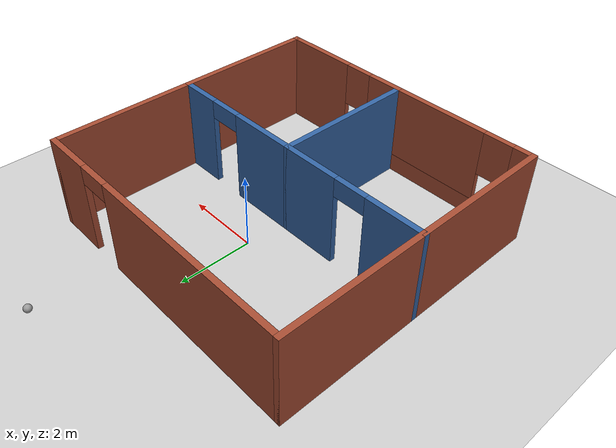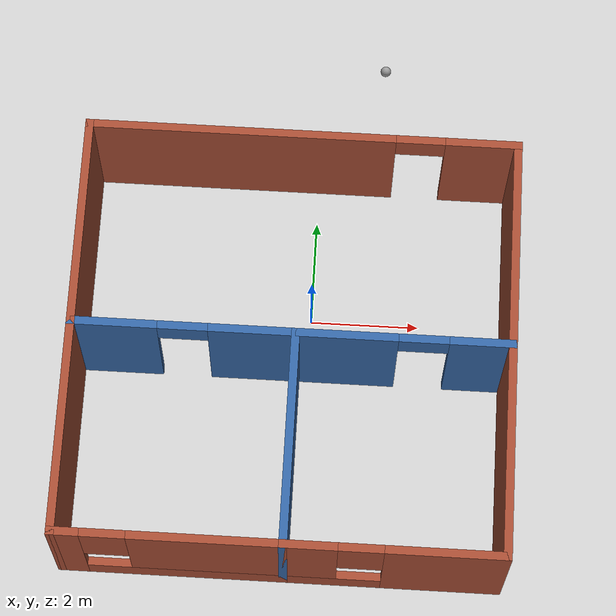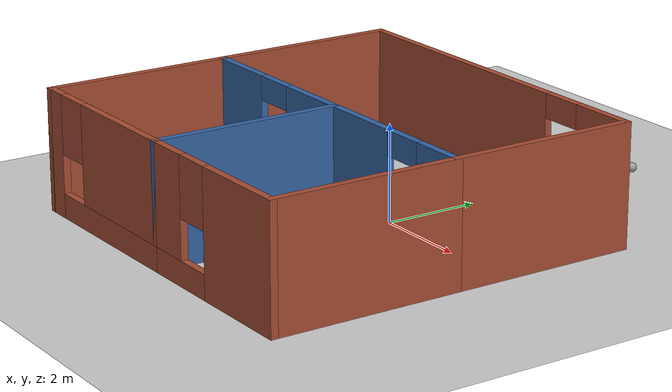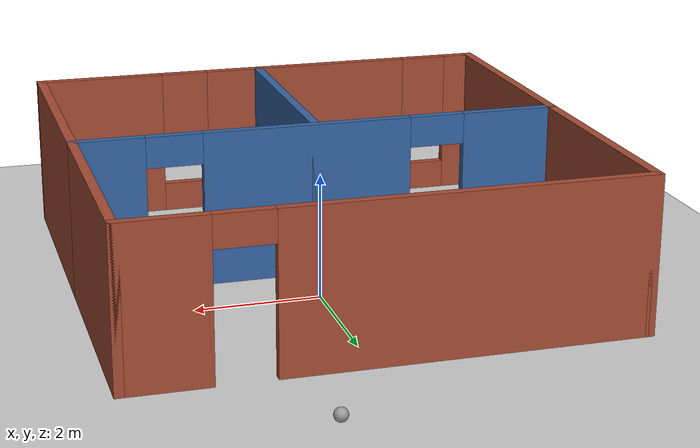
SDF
<sdf version="1.6">
 <world name="default">
  <light name="sun" type="directional">
   <pose>0 0 10 0 -0 0</pose>
   <diffuse>0.8 0.8 0.8 1</diffuse>
   <specular>0.2 0.2 0.2 1</specular>
   <attenuation>
    <range>1000</range>
    <constant>0.9</constant>
    <linear>0.01</linear>
    <quadratic>0.001</quadratic>
   </attenuation>
   <direction>-0.5 0.1 -0.9</direction>
  </light>
  <model name="ground_plane">
   <static>1</static>
   <link name="link">
    <collision name="collision">
     <geometry><plane><normal>0 0 1</normal><size>100 100</size></plane></geometry>
     <surface>
      <contact><collide_bitmask>65535</collide_bitmask></contact>
      <friction><ode><mu>100</mu><mu2>50</mu2></ode></friction>
     </surface>
    </collision>
    <visual name="visual">
     <cast_shadows>0</cast_shadows>
     <geometry><plane><normal>0 0 1</normal><size>100 100</size></plane></geometry>
     <material>
      <script><uri>file://media/materials/scripts/gazebo.material</uri><name>Gazebo/Grey</name></script>
     </material>
    </visual>
   </link>
  </model>
  <gravity>0 0 -9.8</gravity>
  <magnetic_field>6e-06 2.3e-05 -4.2e-05</magnetic_field>
  <atmosphere type="adiabatic"/>
  <physics name="default_physics" default="0" type="ode">
   <max_step_size>0.001</max_step_size>
   <real_time_factor>1</real_time_factor>
   <real_time_update_rate>1000</real_time_update_rate>
  </physics>
  <scene><ambient>0.4 0.4 0.4 1</ambient><background>0.7 0.7 0.7 1</background><shadows>1</shadows></scene>
  <spherical_coordinates>
   <surface_model>EARTH_WGS84</surface_model>
   <latitude_deg>0</latitude_deg>
   <longitude_deg>0</longitude_deg>
   <elevation>0</elevation>
   <heading_deg>0</heading_deg>
  </spherical_coordinates>
  <model name="building">
   <pose>-0.312568 -1.10768 0 0 -0 0</pose>
   <link name="Wall_0">
    <visual name="Wall_0_Visual_0">
     <pose>-3.19275 0 1.25 0 -0 0</pose>
     <geometry><box><size>1.6145 0.15 2.5</size></box></geometry>
     <material>
      <script><uri>file://media/materials/scripts/gazebo.material</uri><name>Gazebo/Grey</name></script>
      <ambient>0.203922 0.396078 0.643137 1</ambient>
     </material>
     <meta><layer>0</layer></meta>
    </visual>
    <collision name="Wall_0_Collision_0">
     <geometry><box><size>1.6145 0.15 2.5</size></box></geometry>
     <pose>-3.19275 0 1.25 0 -0 0</pose>
    </collision>
    <visual name="Wall_0_Visual_1">
     <pose>0.20925 0 1.25 0 -0 0</pose>
     <geometry><box><size>3.3895 0.15 2.5</size></box></geometry>
     <material>
      <script><uri>file://media/materials/scripts/gazebo.material</uri><name>Gazebo/Grey</name></script>
      <ambient>0.203922 0.396078 0.643137 1</ambient>
     </material>
     <meta><layer>0</layer></meta>
    </visual>
    <collision name="Wall_0_Collision_1">
     <geometry><box><size>3.3895 0.15 2.5</size></box></geometry>
     <pose>0.20925 0 1.25 0 -0 0</pose>
    </collision>
    <visual name="Wall_0_Visual_2">
     <pose>3.402 0 1.25 0 -0 0</pose>
     <geometry><box><size>1.196 0.15 2.5</size></box></geometry>
     <material>
      <script><uri>file://media/materials/scripts/gazebo.material</uri><name>Gazebo/Grey</name></script>
      <ambient>0.203922 0.396078 0.643137 1</ambient>
     </material>
     <meta><layer>0</layer></meta>
    </visual>
    <collision name="Wall_0_Collision_2">
     <geometry><box><size>1.196 0.15 2.5</size></box></geometry>
     <pose>3.402 0 1.25 0 -0 0</pose>
    </collision>
    <visual name="Wall_0_Visual_3">
     <pose>-1.9355 0 2.25 0 -0 0</pose>
     <geometry><box><size>0.9 0.15 0.5</size></box></geometry>
     <material>
      <script><uri>file://media/materials/scripts/gazebo.material</uri><name>Gazebo/Grey</name></script>
      <ambient>0.203922 0.396078 0.643137 1</ambient>
     </material>
     <meta><layer>0</layer></meta>
    </visual>
    <collision name="Wall_0_Collision_3">
     <geometry><box><size>0.9 0.15 0.5</size></box></geometry>
     <pose>-1.9355 0 2.25 0 -0 0</pose>
    </collision>
    <visual name="Wall_0_Visual_4">
     <pose>2.354 0 2.25 0 -0 0</pose>
     <geometry><box><size>0.9 0.15 0.5</size></box></geometry>
     <material>
      <script><uri>file://media/materials/scripts/gazebo.material</uri><name>Gazebo/Grey</name></script>
      <ambient>0.203922 0.396078 0.643137 1</ambient>
     </material>
     <meta><layer>0</layer></meta>
    </visual>
    <collision name="Wall_0_Collision_4">
     <geometry><box><size>0.9 0.15 0.5</size></box></geometry>
     <pose>2.354 0 2.25 0 -0 0</pose>
    </collision>
   </link>
   <link name="Wall_1">
    <collision name="Wall_1_Collision">
     <geometry><box><size>4 0.15 2.5</size></box></geometry>
     <pose>0 0 1.25 0 -0 0</pose>
    </collision>
    <visual name="Wall_1_Visual">
     <pose>0 0 1.25 0 -0 0</pose>
     <geometry><box><size>4 0.15 2.5</size></box></geometry>
     <material>
      <script><uri>file://media/materials/scripts/gazebo.material</uri><name>Gazebo/Bricks</name></script>
      <ambient>1 1 1 1</ambient>
     </material>
     <meta><layer>0</layer></meta>
    </visual>
    <pose>3.925 -1.925 0 0 -0 -1.5708</pose>
   </link>
   <link name="Wall_10">
    <collision name="Wall_10_Collision">
     <geometry><box><size>4 0.15 2.5</size></box></geometry>
     <pose>0 0 1.25 0 -0 0</pose>
    </collision>
    <visual name="Wall_10_Visual">
     <pose>0 0 1.25 0 -0 0</pose>
     <geometry><box><size>4 0.15 2.5</size></box></geometry>
     <material>
      <script><uri>file://media/materials/scripts/gazebo.material</uri><name>Gazebo/Bricks</name></script>
      <ambient>1 1 1 1</ambient>
     </material>
     <meta><layer>0</layer></meta>
    </visual>
    <pose>3.925 1.925 0 0 -0 -1.5708</pose>
   </link>
   <link name="Wall_2">
    <pose>2 -3.85 0 0 -0 3.14159</pose>
    <visual name="Wall_2_Visual_0">
     <pose>-0.91125 0 1.25 0 -0 0</pose>
     <geometry><box><size>2.1775 0.15 2.5</size></box></geometry>
     <material>
      <script><uri>file://media/materials/scripts/gazebo.material</uri><name>Gazebo/Bricks</name></script>
      <ambient>1 1 1 1</ambient>
     </material>
     <meta><layer>0</layer></meta>
    </visual>
    <collision name="Wall_2_Collision_0">
     <geometry><box><size>2.1775 0.15 2.5</size></box></geometry>
     <pose>-0.91125 0 1.25 0 -0 0</pose>
    </collision>
    <visual name="Wall_2_Visual_1">
     <pose>1.08875 0 0.25 0 -0 0</pose>
     <geometry><box><size>1.8225 0.15 0.5</size></box></geometry>
     <material>
      <script><uri>file://media/materials/scripts/gazebo.material</uri><name>Gazebo/Bricks</name></script>
      <ambient>1 1 1 1</ambient>
     </material>
     <meta><layer>0</layer></meta>
    </visual>
    <collision name="Wall_2_Collision_1">
     <geometry><box><size>1.8225 0.15 0.5</size></box></geometry>
     <pose>1.08875 0 0.25 0 -0 0</pose>
    </collision>
    <visual name="Wall_2_Visual_2">
     <pose>1.48875 0 1.5 0 -0 0</pose>
     <geometry><box><size>1.0225 0.15 2</size></box></geometry>
     <material>
      <script><uri>file://media/materials/scripts/gazebo.material</uri><name>Gazebo/Bricks</name></script>
      <ambient>1 1 1 1</ambient>
     </material>
     <meta><layer>0</layer></meta>
    </visual>
    <collision name="Wall_2_Collision_2">
     <geometry><box><size>1.0225 0.15 2</size></box></geometry>
     <pose>1.48875 0 1.5 0 -0 0</pose>
    </collision>
    <visual name="Wall_2_Visual_3">
     <pose>0.5775 0 1.9 0 -0 0</pose>
     <geometry><box><size>0.8 0.15 1.2</size></box></geometry>
     <material>
      <script><uri>file://media/materials/scripts/gazebo.material</uri><name>Gazebo/Bricks</name></script>
      <ambient>1 1 1 1</ambient>
     </material>
     <meta><layer>0</layer></meta>
    </visual>
    <collision name="Wall_2_Collision_3">
     <geometry><box><size>0.8 0.15 1.2</size></box></geometry>
     <pose>0.5775 0 1.9 0 -0 0</pose>
    </collision>
   </link>
   <link name="Wall_3">
    <collision name="Wall_3_Collision">
     <geometry><box><size>4 0.15 2.5</size></box></geometry>
     <pose>0 0 1.25 0 -0 0</pose>
    </collision>
    <visual name="Wall_3_Visual">
     <pose>0 0 1.25 0 -0 0</pose>
     <geometry><box><size>4 0.15 2.5</size></box></geometry>
     <material>
      <script><uri>file://media/materials/scripts/gazebo.material</uri><name>Gazebo/Grey</name></script>
      <ambient>0.203922 0.396078 0.643137 1</ambient>
     </material>
     <meta><layer>0</layer></meta>
    </visual>
    <pose>0.075 -1.925 0 0 -0 1.5708</pose>
   </link>
   <link name="Wall_5">
    <collision name="Wall_5_Collision">
     <geometry><box><size>4 0.15 2.5</size></box></geometry>
     <pose>0 0 1.25 0 -0 0</pose>
    </collision>
    <visual name="Wall_5_Visual">
     <pose>0 0 1.25 0 -0 0</pose>
     <geometry><box><size>4 0.15 2.5</size></box></geometry>
     <material>
      <script><uri>file://media/materials/scripts/gazebo.material</uri><name>Gazebo/Bricks</name></script>
      <ambient>1 1 1 1</ambient>
     </material>
     <meta><layer>0</layer></meta>
    </visual>
    <pose>-3.925 -1.925 0 0 -0 -1.5708</pose>
   </link>
   <link name="Wall_6">
    <pose>-1.925 -3.85 0 0 -0 0</pose>
    <visual name="Wall_6_Visual_0">
     <pose>-1.789 0 1.25 0 -0 0</pose>
     <geometry><box><size>0.572 0.15 2.5</size></box></geometry>
     <material>
      <script><uri>file://media/materials/scripts/gazebo.material</uri><name>Gazebo/Bricks</name></script>
      <ambient>1 1 1 1</ambient>
     </material>
     <meta><layer>0</layer></meta>
    </visual>
    <collision name="Wall_6_Collision_0">
     <geometry><box><size>0.572 0.15 2.5</size></box></geometry>
     <pose>-1.789 0 1.25 0 -0 0</pose>
    </collision>
    <visual name="Wall_6_Visual_1">
     <pose>0.286 0 0.25 0 -0 0</pose>
     <geometry><box><size>3.578 0.15 0.5</size></box></geometry>
     <material>
      <script><uri>file://media/materials/scripts/gazebo.material</uri><name>Gazebo/Bricks</name></script>
      <ambient>1 1 1 1</ambient>
     </material>
     <meta><layer>0</layer></meta>
    </visual>
    <collision name="Wall_6_Collision_1">
     <geometry><box><size>3.578 0.15 0.5</size></box></geometry>
     <pose>0.286 0 0.25 0 -0 0</pose>
    </collision>
    <visual name="Wall_6_Visual_2">
     <pose>0.686 0 1.5 0 -0 0</pose>
     <geometry><box><size>2.778 0.15 2</size></box></geometry>
     <material>
      <script><uri>file://media/materials/scripts/gazebo.material</uri><name>Gazebo/Bricks</name></script>
      <ambient>1 1 1 1</ambient>
     </material>
     <meta><layer>0</layer></meta>
    </visual>
    <collision name="Wall_6_Collision_2">
     <geometry><box><size>2.778 0.15 2</size></box></geometry>
     <pose>0.686 0 1.5 0 -0 0</pose>
    </collision>
    <visual name="Wall_6_Visual_3">
     <pose>-1.103 0 1.9 0 -0 0</pose>
     <geometry><box><size>0.8 0.15 1.2</size></box></geometry>
     <material>
      <script><uri>file://media/materials/scripts/gazebo.material</uri><name>Gazebo/Bricks</name></script>
      <ambient>1 1 1 1</ambient>
     </material>
     <meta><layer>0</layer></meta>
    </visual>
    <collision name="Wall_6_Collision_3">
     <geometry><box><size>0.8 0.15 1.2</size></box></geometry>
     <pose>-1.103 0 1.9 0 -0 0</pose>
    </collision>
   </link>
   <link name="Wall_8">
    <collision name="Wall_8_Collision">
     <geometry><box><size>4 0.15 2.5</size></box></geometry>
     <pose>0 0 1.25 0 -0 0</pose>
    </collision>
    <visual name="Wall_8_Visual">
     <pose>0 0 1.25 0 -0 0</pose>
     <geometry><box><size>4 0.15 2.5</size></box></geometry>
     <material>
      <script><uri>file://media/materials/scripts/gazebo.material</uri><name>Gazebo/Bricks</name></script>
      <ambient>1 1 1 1</ambient>
     </material>
     <meta><layer>0</layer></meta>
    </visual>
    <pose>-3.925 1.925 0 0 -0 1.5708</pose>
   </link>
   <link name="Wall_9">
    <pose>-0 3.85 0 0 -0 0</pose>
    <visual name="Wall_9_Visual_0">
     <pose>-1.1515 0 1.25 0 -0 0</pose>
     <geometry><box><size>5.697 0.15 2.5</size></box></geometry>
     <material>
      <script><uri>file://media/materials/scripts/gazebo.material</uri><name>Gazebo/Bricks</name></script>
      <ambient>1 1 1 1</ambient>
     </material>
     <meta><layer>0</layer></meta>
    </visual>
    <collision name="Wall_9_Collision_0">
     <geometry><box><size>5.697 0.15 2.5</size></box></geometry>
     <pose>-1.1515 0 1.25 0 -0 0</pose>
    </collision>
    <visual name="Wall_9_Visual_1">
     <pose>3.2985 0 1.25 0 -0 0</pose>
     <geometry><box><size>1.403 0.15 2.5</size></box></geometry>
     <material>
      <script><uri>file://media/materials/scripts/gazebo.material</uri><name>Gazebo/Bricks</name></script>
      <ambient>1 1 1 1</ambient>
     </material>
     <meta><layer>0</layer></meta>
    </visual>
    <collision name="Wall_9_Collision_1">
     <geometry><box><size>1.403 0.15 2.5</size></box></geometry>
     <pose>3.2985 0 1.25 0 -0 0</pose>
    </collision>
    <visual name="Wall_9_Visual_2">
     <pose>2.147 0 2.25 0 -0 0</pose>
     <geometry><box><size>0.9 0.15 0.5</size></box></geometry>
     <material>
      <script><uri>file://media/materials/scripts/gazebo.material</uri><name>Gazebo/Bricks</name></script>
      <ambient>1 1 1 1</ambient>
     </material>
     <meta><layer>0</layer></meta>
    </visual>
    <collision name="Wall_9_Collision_2">
     <geometry><box><size>0.9 0.15 0.5</size></box></geometry>
     <pose>2.147 0 2.25 0 -0 0</pose>
    </collision>
   </link>
   <static>1</static>
  </model>
  <model name="white_ball">
   <link name="link">
    <inertial>
     <mass>1</mass>
     <inertia><ixx>0.1</ixx><ixy>0</ixy><ixz>0</ixz><iyy>0.1</iyy><iyz>0</iyz><izz>0.1</izz></inertia>
    </inertial>
    <visual name="visual">
     <geometry><sphere><radius>0.1</radius></sphere></geometry>
     <material>
      <script><name>Gazebo/Grey</name><uri>file://media/materials/scripts/gazebo.material</uri></script>
      <ambient>1 1 1 1</ambient>
      <diffuse>1 1 1 1</diffuse>
      <specular>1 1 1 1</specular>
      <emissive>1 1 1 1</emissive>
      <shader type="vertex"><normal_map>__default__</normal_map></shader>
     </material>
    </visual>
    <collision name="collision">
     <geometry><sphere><radius>0.1</radius></sphere></geometry>
     <surface>
      <friction>
       <ode><mu>1</mu><mu2>1</mu2><fdir1>0 0 0</fdir1><slip1>0</slip1><slip2>0</slip2></ode>
       <torsional>
        <coefficient>1</coefficient>
        <patch_radius>0</patch_radius>
        <surface_radius>0</surface_radius>
        <use_patch_radius>1</use_patch_radius>
        <ode><slip>0</slip></ode>
       </torsional>
      </friction>
      <bounce><restitution_coefficient>0</restitution_coefficient><threshold>1e+06</threshold></bounce>
      <contact>
       <collide_without_contact>0</collide_without_contact>
       <collide_without_contact_bitmask>1</collide_without_contact_bitmask>
       <collide_bitmask>1</collide_bitmask>
       <ode>
        <soft_cfm>0</soft_cfm>
        <soft_erp>0.2</soft_erp>
        <kp>1e+13</kp>
        <kd>1</kd>
        <max_vel>0.01</max_vel>
        <min_depth>0</min_depth>
       </ode>
       <bullet>
        <split_impulse>1</split_impulse>
        <split_impulse_penetration_threshold>-0.01</split_impulse_penetration_threshold>
        <soft_cfm>0</soft_cfm>
        <soft_erp>0.2</soft_erp>
        <kp>1e+13</kp>
        <kd>1</kd>
       </bullet>
      </contact>
     </surface>
    </collision>
   </link>
   <static>0</static>
   <pose>1.16866 5.10238 0.5 0 -0 0</pose>
  </model>
 </world>
</sdf>
